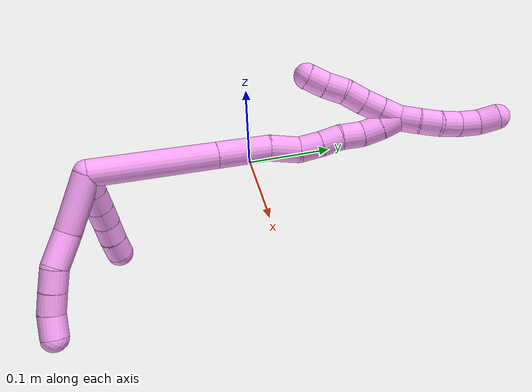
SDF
<sdf version="1.7">
 <world name="default">
  <model name="4">
   <static>0</static>
   <link name="4">
    <collision name="collision-cylinder-e_1_2_8">
     <pose>-0.001544 0.007897 0.026003 -0.29484 -0.056761 0.008431</pose>
     <geometry><cylinder><radius>0.0125</radius><length>0.054439</length></cylinder></geometry>
     <surface>
      <friction><ode><mu>1.16</mu><mu2>1.16</mu2><slip1>0</slip1><slip2>0</slip2></ode></friction>
      <contact><ode><kp>1e+06</kp><kd>1</kd><max_vel>0</max_vel><min_depth>0.001</min_depth></ode></contact>
     </surface>
    </collision>
    <visual name="visual-cylinder-e_1_2_8">
     <pose>-0.001544 0.007897 0.026003 -0.29484 -0.056761 0.008431</pose>
     <geometry><cylinder><radius>0.0125</radius><length>0.054439</length></cylinder></geometry>
     <material><ambient>1 0.65098 0.996078 1</ambient></material>
    </visual>
    <collision name="collision-cylinder-e_2_8_9">
     <pose>-0.007582 0.019086 0.067273 -0.212391 -0.280166 0.030059</pose>
     <geometry><cylinder><radius>0.0125</radius><length>0.032503</length></cylinder></geometry>
     <surface>
      <friction><ode><mu>1.16</mu><mu2>1.16</mu2><slip1>0</slip1><slip2>0</slip2></ode></friction>
      <contact><ode><kp>1e+06</kp><kd>1</kd><max_vel>0</max_vel><min_depth>0.001</min_depth></ode></contact>
     </surface>
    </collision>
    <visual name="visual-cylinder-e_2_8_9">
     <pose>-0.007582 0.019086 0.067273 -0.212391 -0.280166 0.030059</pose>
     <geometry><cylinder><radius>0.0125</radius><length>0.032503</length></cylinder></geometry>
     <material><ambient>1 0.65098 0.996078 1</ambient></material>
    </visual>
    <collision name="collision-cylinder-e_3_9_10">
     <pose>-0.013643 0.027393 0.091668 -0.50237 -0.149314 0.038381</pose>
     <geometry><cylinder><radius>0.0125</radius><length>0.021064</length></cylinder></geometry>
     <surface>
      <friction><ode><mu>1.16</mu><mu2>1.16</mu2><slip1>0</slip1><slip2>0</slip2></ode></friction>
      <contact><ode><kp>1e+06</kp><kd>1</kd><max_vel>0</max_vel><min_depth>0.001</min_depth></ode></contact>
     </surface>
    </collision>
    <visual name="visual-cylinder-e_3_9_10">
     <pose>-0.013643 0.027393 0.091668 -0.50237 -0.149314 0.038381</pose>
     <geometry><cylinder><radius>0.0125</radius><length>0.021064</length></cylinder></geometry>
     <material><ambient>1 0.65098 0.996078 1</ambient></material>
    </visual>
    <collision name="collision-cylinder-e_4_10_11">
     <pose>-0.016508 0.037423 0.109475 -0.523987 -0.128862 0.0346</pose>
     <geometry><cylinder><radius>0.0125</radius><length>0.020216</length></cylinder></geometry>
     <surface>
      <friction><ode><mu>1.16</mu><mu2>1.16</mu2><slip1>0</slip1><slip2>0</slip2></ode></friction>
      <contact><ode><kp>1e+06</kp><kd>1</kd><max_vel>0</max_vel><min_depth>0.001</min_depth></ode></contact>
     </surface>
    </collision>
    <visual name="visual-cylinder-e_4_10_11">
     <pose>-0.016508 0.037423 0.109475 -0.523987 -0.128862 0.0346</pose>
     <geometry><cylinder><radius>0.0125</radius><length>0.020216</length></cylinder></geometry>
     <material><ambient>1 0.65098 0.996078 1</ambient></material>
    </visual>
    <collision name="collision-cylinder-e_5_11_6">
     <pose>-0.02119 0.049124 0.126056 -0.702234 -0.315836 0.116529</pose>
     <geometry><cylinder><radius>0.0125</radius><length>0.021778</length></cylinder></geometry>
     <surface>
      <friction><ode><mu>1.16</mu><mu2>1.16</mu2><slip1>0</slip1><slip2>0</slip2></ode></friction>
      <contact><ode><kp>1e+06</kp><kd>1</kd><max_vel>0</max_vel><min_depth>0.001</min_depth></ode></contact>
     </surface>
    </collision>
    <visual name="visual-cylinder-e_5_11_6">
     <pose>-0.02119 0.049124 0.126056 -0.702234 -0.315836 0.116529</pose>
     <geometry><cylinder><radius>0.0125</radius><length>0.021778</length></cylinder></geometry>
     <material><ambient>1 0.65098 0.996078 1</ambient></material>
    </visual>
    <collision name="collision-cylinder-e_1_2_12">
     <pose>0.003553 0.007077 0.006107 -0.858785 0.363238 -0.16778</pose>
     <geometry><cylinder><radius>0.0125</radius><length>0.02</length></cylinder></geometry>
     <surface>
      <friction><ode><mu>1.16</mu><mu2>1.16</mu2><slip1>0</slip1><slip2>0</slip2></ode></friction>
      <contact><ode><kp>1e+06</kp><kd>1</kd><max_vel>0</max_vel><min_depth>0.001</min_depth></ode></contact>
     </surface>
    </collision>
    <visual name="visual-cylinder-e_1_2_12">
     <pose>0.003553 0.007077 0.006107 -0.858785 0.363238 -0.16778</pose>
     <geometry><cylinder><radius>0.0125</radius><length>0.02</length></cylinder></geometry>
     <material><ambient>1 0.65098 0.996078 1</ambient></material>
    </visual>
    <collision name="collision-cylinder-e_2_12_13">
     <pose>0.010843 0.0219 0.017316 -0.988492 0.383018 -0.208196</pose>
     <geometry><cylinder><radius>0.0125</radius><length>0.02</length></cylinder></geometry>
     <surface>
      <friction><ode><mu>1.16</mu><mu2>1.16</mu2><slip1>0</slip1><slip2>0</slip2></ode></friction>
      <contact><ode><kp>1e+06</kp><kd>1</kd><max_vel>0</max_vel><min_depth>0.001</min_depth></ode></contact>
     </surface>
    </collision>
    <visual name="visual-cylinder-e_2_12_13">
     <pose>0.010843 0.0219 0.017316 -0.988492 0.383018 -0.208196</pose>
     <geometry><cylinder><radius>0.0125</radius><length>0.02</length></cylinder></geometry>
     <material><ambient>1 0.65098 0.996078 1</ambient></material>
    </visual>
    <collision name="collision-cylinder-e_3_13_14">
     <pose>0.018298 0.037374 0.027561 -0.983389 0.380863 -0.205751</pose>
     <geometry><cylinder><radius>0.0125</radius><length>0.02</length></cylinder></geometry>
     <surface>
      <friction><ode><mu>1.16</mu><mu2>1.16</mu2><slip1>0</slip1><slip2>0</slip2></ode></friction>
      <contact><ode><kp>1e+06</kp><kd>1</kd><max_vel>0</max_vel><min_depth>0.001</min_depth></ode></contact>
     </surface>
    </collision>
    <visual name="visual-cylinder-e_3_13_14">
     <pose>0.018298 0.037374 0.027561 -0.983389 0.380863 -0.205751</pose>
     <geometry><cylinder><radius>0.0125</radius><length>0.02</length></cylinder></geometry>
     <material><ambient>1 0.65098 0.996078 1</ambient></material>
    </visual>
    <collision name="collision-cylinder-e_4_14_15">
     <pose>0.024581 0.053049 0.038206 -0.965538 0.25955 -0.136595</pose>
     <geometry><cylinder><radius>0.0125</radius><length>0.02</length></cylinder></geometry>
     <surface>
      <friction><ode><mu>1.16</mu><mu2>1.16</mu2><slip1>0</slip1><slip2>0</slip2></ode></friction>
      <contact><ode><kp>1e+06</kp><kd>1</kd><max_vel>0</max_vel><min_depth>0.001</min_depth></ode></contact>
     </surface>
    </collision>
    <visual name="visual-cylinder-e_4_14_15">
     <pose>0.024581 0.053049 0.038206 -0.965538 0.25955 -0.136595</pose>
     <geometry><cylinder><radius>0.0125</radius><length>0.02</length></cylinder></geometry>
     <material><ambient>1 0.65098 0.996078 1</ambient></material>
    </visual>
    <collision name="collision-cylinder-e_5_15_5">
     <pose>0.03013 0.069143 0.04868 -1.02245 0.302795 -0.170752</pose>
     <geometry><cylinder><radius>0.0125</radius><length>0.02</length></cylinder></geometry>
     <surface>
      <friction><ode><mu>1.16</mu><mu2>1.16</mu2><slip1>0</slip1><slip2>0</slip2></ode></friction>
      <contact><ode><kp>1e+06</kp><kd>1</kd><max_vel>0</max_vel><min_depth>0.001</min_depth></ode></contact>
     </surface>
    </collision>
    <visual name="visual-cylinder-e_5_15_5">
     <pose>0.03013 0.069143 0.04868 -1.02245 0.302795 -0.170752</pose>
     <geometry><cylinder><radius>0.0125</radius><length>0.02</length></cylinder></geometry>
     <material><ambient>1 0.65098 0.996078 1</ambient></material>
    </visual>
    <collision name="collision-cylinder-e_1_2_16">
     <pose>-0.003388 0.041954 -0.039435 -2.32526 -0.058769 0.135729</pose>
     <geometry><cylinder><radius>0.0125</radius><length>0.115356</length></cylinder></geometry>
     <surface>
      <friction><ode><mu>1.16</mu><mu2>1.16</mu2><slip1>0</slip1><slip2>0</slip2></ode></friction>
      <contact><ode><kp>1e+06</kp><kd>1</kd><max_vel>0</max_vel><min_depth>0.001</min_depth></ode></contact>
     </surface>
    </collision>
    <visual name="visual-cylinder-e_1_2_16">
     <pose>-0.003388 0.041954 -0.039435 -2.32526 -0.058769 0.135729</pose>
     <geometry><cylinder><radius>0.0125</radius><length>0.115356</length></cylinder></geometry>
     <material><ambient>1 0.65098 0.996078 1</ambient></material>
    </visual>
    <collision name="collision-cylinder-e_2_16_17">
     <pose>-0.008298 0.102429 -0.09632 -2.32639 -0.059774 0.138256</pose>
     <geometry><cylinder><radius>0.0125</radius><length>0.050984</length></cylinder></geometry>
     <surface>
      <friction><ode><mu>1.16</mu><mu2>1.16</mu2><slip1>0</slip1><slip2>0</slip2></ode></friction>
      <contact><ode><kp>1e+06</kp><kd>1</kd><max_vel>0</max_vel><min_depth>0.001</min_depth></ode></contact>
     </surface>
    </collision>
    <visual name="visual-cylinder-e_2_16_17">
     <pose>-0.008298 0.102429 -0.09632 -2.32639 -0.059774 0.138256</pose>
     <geometry><cylinder><radius>0.0125</radius><length>0.050984</length></cylinder></geometry>
     <material><ambient>1 0.65098 0.996078 1</ambient></material>
    </visual>
    <collision name="collision-cylinder-e_3_17_18">
     <pose>-0.013121 0.132807 -0.12167 -2.15863 -0.2276 0.420715</pose>
     <geometry><cylinder><radius>0.0125</radius><length>0.029251</length></cylinder></geometry>
     <surface>
      <friction><ode><mu>1.16</mu><mu2>1.16</mu2><slip1>0</slip1><slip2>0</slip2></ode></friction>
      <contact><ode><kp>1e+06</kp><kd>1</kd><max_vel>0</max_vel><min_depth>0.001</min_depth></ode></contact>
     </surface>
    </collision>
    <visual name="visual-cylinder-e_3_17_18">
     <pose>-0.013121 0.132807 -0.12167 -2.15863 -0.2276 0.420715</pose>
     <geometry><cylinder><radius>0.0125</radius><length>0.029251</length></cylinder></geometry>
     <material><ambient>1 0.65098 0.996078 1</ambient></material>
    </visual>
    <collision name="collision-cylinder-e_4_18_19">
     <pose>-0.018318 0.1512 -0.137983 -2.48096 -0.176215 0.504298</pose>
     <geometry><cylinder><radius>0.0125</radius><length>0.021639</length></cylinder></geometry>
     <surface>
      <friction><ode><mu>1.16</mu><mu2>1.16</mu2><slip1>0</slip1><slip2>0</slip2></ode></friction>
      <contact><ode><kp>1e+06</kp><kd>1</kd><max_vel>0</max_vel><min_depth>0.001</min_depth></ode></contact>
     </surface>
    </collision>
    <visual name="visual-cylinder-e_4_18_19">
     <pose>-0.018318 0.1512 -0.137983 -2.48096 -0.176215 0.504298</pose>
     <geometry><cylinder><radius>0.0125</radius><length>0.021639</length></cylinder></geometry>
     <material><ambient>1 0.65098 0.996078 1</ambient></material>
    </visual>
    <collision name="collision-cylinder-e_5_19_20">
     <pose>-0.02164 0.163444 -0.154844 -2.54752 -0.138879 0.446857</pose>
     <geometry><cylinder><radius>0.0125</radius><length>0.020593</length></cylinder></geometry>
     <surface>
      <friction><ode><mu>1.16</mu><mu2>1.16</mu2><slip1>0</slip1><slip2>0</slip2></ode></friction>
      <contact><ode><kp>1e+06</kp><kd>1</kd><max_vel>0</max_vel><min_depth>0.001</min_depth></ode></contact>
     </surface>
    </collision>
    <visual name="visual-cylinder-e_5_19_20">
     <pose>-0.02164 0.163444 -0.154844 -2.54752 -0.138879 0.446857</pose>
     <geometry><cylinder><radius>0.0125</radius><length>0.020593</length></cylinder></geometry>
     <material><ambient>1 0.65098 0.996078 1</ambient></material>
    </visual>
    <collision name="collision-cylinder-e_6_20_21">
     <pose>-0.024589 0.176863 -0.170848 -2.3459 -0.140169 0.331023</pose>
     <geometry><cylinder><radius>0.0125</radius><length>0.021804</length></cylinder></geometry>
     <surface>
      <friction><ode><mu>1.16</mu><mu2>1.16</mu2><slip1>0</slip1><slip2>0</slip2></ode></friction>
      <contact><ode><kp>1e+06</kp><kd>1</kd><max_vel>0</max_vel><min_depth>0.001</min_depth></ode></contact>
     </surface>
    </collision>
    <visual name="visual-cylinder-e_6_20_21">
     <pose>-0.024589 0.176863 -0.170848 -2.3459 -0.140169 0.331023</pose>
     <geometry><cylinder><radius>0.0125</radius><length>0.021804</length></cylinder></geometry>
     <material><ambient>1 0.65098 0.996078 1</ambient></material>
    </visual>
    <collision name="collision-cylinder-e_7_21_22">
     <pose>-0.028105 0.189826 -0.186738 -2.57938 -0.199649 0.66775</pose>
     <geometry><cylinder><radius>0.0125</radius><length>0.020104</length></cylinder></geometry>
     <surface>
      <friction><ode><mu>1.16</mu><mu2>1.16</mu2><slip1>0</slip1><slip2>0</slip2></ode></friction>
      <contact><ode><kp>1e+06</kp><kd>1</kd><max_vel>0</max_vel><min_depth>0.001</min_depth></ode></contact>
     </surface>
    </collision>
    <visual name="visual-cylinder-e_7_21_22">
     <pose>-0.028105 0.189826 -0.186738 -2.57938 -0.199649 0.66775</pose>
     <geometry><cylinder><radius>0.0125</radius><length>0.020104</length></cylinder></geometry>
     <material><ambient>1 0.65098 0.996078 1</ambient></material>
    </visual>
    <collision name="collision-cylinder-e_8_22_1">
     <pose>-0.032122 0.199188 -0.204115 -2.71498 -0.200979 0.871341</pose>
     <geometry><cylinder><radius>0.0125</radius><length>0.02027</length></cylinder></geometry>
     <surface>
      <friction><ode><mu>1.16</mu><mu2>1.16</mu2><slip1>0</slip1><slip2>0</slip2></ode></friction>
      <contact><ode><kp>1e+06</kp><kd>1</kd><max_vel>0</max_vel><min_depth>0.001</min_depth></ode></contact>
     </surface>
    </collision>
    <visual name="visual-cylinder-e_8_22_1">
     <pose>-0.032122 0.199188 -0.204115 -2.71498 -0.200979 0.871341</pose>
     <geometry><cylinder><radius>0.0125</radius><length>0.02027</length></cylinder></geometry>
     <material><ambient>1 0.65098 0.996078 1</ambient></material>
    </visual>
    <collision name="collision-cylinder-e_1_1_23">
     <pose>-0.030601 0.194214 -0.210934 1.33093 0.362291 0.285557</pose>
     <geometry><cylinder><radius>0.0125</radius><length>0.02</length></cylinder></geometry>
     <surface>
      <friction><ode><mu>1.16</mu><mu2>1.16</mu2><slip1>0</slip1><slip2>0</slip2></ode></friction>
      <contact><ode><kp>1e+06</kp><kd>1</kd><max_vel>0</max_vel><min_depth>0.001</min_depth></ode></contact>
     </surface>
    </collision>
    <visual name="visual-cylinder-e_1_1_23">
     <pose>-0.030601 0.194214 -0.210934 1.33093 0.362291 0.285557</pose>
     <geometry><cylinder><radius>0.0125</radius><length>0.02</length></cylinder></geometry>
     <material><ambient>1 0.65098 0.996078 1</ambient></material>
    </visual>
    <collision name="collision-cylinder-e_2_23_24">
     <pose>-0.024382 0.175786 -0.206362 1.32431 0.27076 0.211581</pose>
     <geometry><cylinder><radius>0.0125</radius><length>0.02</length></cylinder></geometry>
     <surface>
      <friction><ode><mu>1.16</mu><mu2>1.16</mu2><slip1>0</slip1><slip2>0</slip2></ode></friction>
      <contact><ode><kp>1e+06</kp><kd>1</kd><max_vel>0</max_vel><min_depth>0.001</min_depth></ode></contact>
     </surface>
    </collision>
    <visual name="visual-cylinder-e_2_23_24">
     <pose>-0.024382 0.175786 -0.206362 1.32431 0.27076 0.211581</pose>
     <geometry><cylinder><radius>0.0125</radius><length>0.02</length></cylinder></geometry>
     <material><ambient>1 0.65098 0.996078 1</ambient></material>
    </visual>
    <collision name="collision-cylinder-e_3_24_25">
     <pose>-0.019437 0.156842 -0.202371 1.40164 0.229027 0.19347</pose>
     <geometry><cylinder><radius>0.0125</radius><length>0.02</length></cylinder></geometry>
     <surface>
      <friction><ode><mu>1.16</mu><mu2>1.16</mu2><slip1>0</slip1><slip2>0</slip2></ode></friction>
      <contact><ode><kp>1e+06</kp><kd>1</kd><max_vel>0</max_vel><min_depth>0.001</min_depth></ode></contact>
     </surface>
    </collision>
    <visual name="visual-cylinder-e_3_24_25">
     <pose>-0.019437 0.156842 -0.202371 1.40164 0.229027 0.19347</pose>
     <geometry><cylinder><radius>0.0125</radius><length>0.02</length></cylinder></geometry>
     <material><ambient>1 0.65098 0.996078 1</ambient></material>
    </visual>
    <collision name="collision-cylinder-e_4_25_26">
     <pose>-0.013202 0.138616 -0.19759 1.22158 0.407712 0.287463</pose>
     <geometry><cylinder><radius>0.0125</radius><length>0.02</length></cylinder></geometry>
     <surface>
      <friction><ode><mu>1.16</mu><mu2>1.16</mu2><slip1>0</slip1><slip2>0</slip2></ode></friction>
      <contact><ode><kp>1e+06</kp><kd>1</kd><max_vel>0</max_vel><min_depth>0.001</min_depth></ode></contact>
     </surface>
    </collision>
    <visual name="visual-cylinder-e_4_25_26">
     <pose>-0.013202 0.138616 -0.19759 1.22158 0.407712 0.287463</pose>
     <geometry><cylinder><radius>0.0125</radius><length>0.02</length></cylinder></geometry>
     <material><ambient>1 0.65098 0.996078 1</ambient></material>
    </visual>
    <collision name="collision-cylinder-e_5_26_4">
     <pose>-0.00705 0.120496 -0.192195 1.33766 0.220493 0.174531</pose>
     <geometry><cylinder><radius>0.0125</radius><length>0.02</length></cylinder></geometry>
     <surface>
      <friction><ode><mu>1.16</mu><mu2>1.16</mu2><slip1>0</slip1><slip2>0</slip2></ode></friction>
      <contact><ode><kp>1e+06</kp><kd>1</kd><max_vel>0</max_vel><min_depth>0.001</min_depth></ode></contact>
     </surface>
    </collision>
    <visual name="visual-cylinder-e_5_26_4">
     <pose>-0.00705 0.120496 -0.192195 1.33766 0.220493 0.174531</pose>
     <geometry><cylinder><radius>0.0125</radius><length>0.02</length></cylinder></geometry>
     <material><ambient>1 0.65098 0.996078 1</ambient></material>
    </visual>
    <collision name="collision-cylinder-e_1_1_27">
     <pose>-0.039087 0.21076 -0.217615 -2.10943 -0.516917 0.872092</pose>
     <geometry><cylinder><radius>0.0125</radius><length>0.02</length></cylinder></geometry>
     <surface>
      <friction><ode><mu>1.16</mu><mu2>1.16</mu2><slip1>0</slip1><slip2>0</slip2></ode></friction>
      <contact><ode><kp>1e+06</kp><kd>1</kd><max_vel>0</max_vel><min_depth>0.001</min_depth></ode></contact>
     </surface>
    </collision>
    <visual name="visual-cylinder-e_1_1_27">
     <pose>-0.039087 0.21076 -0.217615 -2.10943 -0.516917 0.872092</pose>
     <geometry><cylinder><radius>0.0125</radius><length>0.02</length></cylinder></geometry>
     <material><ambient>1 0.65098 0.996078 1</ambient></material>
    </visual>
    <collision name="collision-cylinder-e_2_27_28">
     <pose>-0.047841 0.226095 -0.226921 -2.12261 -0.391 0.681272</pose>
     <geometry><cylinder><radius>0.0125</radius><length>0.02</length></cylinder></geometry>
     <surface>
      <friction><ode><mu>1.16</mu><mu2>1.16</mu2><slip1>0</slip1><slip2>0</slip2></ode></friction>
      <contact><ode><kp>1e+06</kp><kd>1</kd><max_vel>0</max_vel><min_depth>0.001</min_depth></ode></contact>
     </surface>
    </collision>
    <visual name="visual-cylinder-e_2_27_28">
     <pose>-0.047841 0.226095 -0.226921 -2.12261 -0.391 0.681272</pose>
     <geometry><cylinder><radius>0.0125</radius><length>0.02</length></cylinder></geometry>
     <material><ambient>1 0.65098 0.996078 1</ambient></material>
    </visual>
    <collision name="collision-cylinder-e_3_28_29">
     <pose>-0.053159 0.242033 -0.237486 -2.18756 -0.151285 0.291206</pose>
     <geometry><cylinder><radius>0.0125</radius><length>0.02</length></cylinder></geometry>
     <surface>
      <friction><ode><mu>1.16</mu><mu2>1.16</mu2><slip1>0</slip1><slip2>0</slip2></ode></friction>
      <contact><ode><kp>1e+06</kp><kd>1</kd><max_vel>0</max_vel><min_depth>0.001</min_depth></ode></contact>
     </surface>
    </collision>
    <visual name="visual-cylinder-e_3_28_29">
     <pose>-0.053159 0.242033 -0.237486 -2.18756 -0.151285 0.291206</pose>
     <geometry><cylinder><radius>0.0125</radius><length>0.02</length></cylinder></geometry>
     <material><ambient>1 0.65098 0.996078 1</ambient></material>
    </visual>
    <collision name="collision-cylinder-e_4_29_30">
     <pose>-0.057244 0.257125 -0.249834 -2.32712 -0.2608 0.590303</pose>
     <geometry><cylinder><radius>0.0125</radius><length>0.02</length></cylinder></geometry>
     <surface>
      <friction><ode><mu>1.16</mu><mu2>1.16</mu2><slip1>0</slip1><slip2>0</slip2></ode></friction>
      <contact><ode><kp>1e+06</kp><kd>1</kd><max_vel>0</max_vel><min_depth>0.001</min_depth></ode></contact>
     </surface>
    </collision>
    <visual name="visual-cylinder-e_4_29_30">
     <pose>-0.057244 0.257125 -0.249834 -2.32712 -0.2608 0.590303</pose>
     <geometry><cylinder><radius>0.0125</radius><length>0.02</length></cylinder></geometry>
     <material><ambient>1 0.65098 0.996078 1</ambient></material>
    </visual>
    <collision name="collision-cylinder-e_5_30_3">
     <pose>-0.063345 0.269257 -0.264309 -2.56465 -0.359921 1.09995</pose>
     <geometry><cylinder><radius>0.0125</radius><length>0.02</length></cylinder></geometry>
     <surface>
      <friction><ode><mu>1.16</mu><mu2>1.16</mu2><slip1>0</slip1><slip2>0</slip2></ode></friction>
      <contact><ode><kp>1e+06</kp><kd>1</kd><max_vel>0</max_vel><min_depth>0.001</min_depth></ode></contact>
     </surface>
    </collision>
    <visual name="visual-cylinder-e_5_30_3">
     <pose>-0.063345 0.269257 -0.264309 -2.56465 -0.359921 1.09995</pose>
     <geometry><cylinder><radius>0.0125</radius><length>0.02</length></cylinder></geometry>
     <material><ambient>1 0.65098 0.996078 1</ambient></material>
    </visual>
    <collision name="collision-sphere-3">
     <pose>-0.066867 0.274363 -0.272153 0 -0 0</pose>
     <geometry><sphere><radius>0.0125</radius></sphere></geometry>
     <surface>
      <friction><ode><mu>1.16</mu><mu2>1.16</mu2><slip1>0</slip1><slip2>0</slip2></ode></friction>
      <contact><ode><kp>1e+06</kp><kd>1</kd><max_vel>0</max_vel><min_depth>0.001</min_depth></ode></contact>
     </surface>
    </collision>
    <visual name="visual-sphere-3">
     <pose>-0.066867 0.274363 -0.272153 0 -0 0</pose>
     <geometry><sphere><radius>0.0125</radius></sphere></geometry>
     <material><ambient>1 0.65098 0.996078 1</ambient></material>
    </visual>
    <collision name="collision-sphere-30">
     <pose>-0.059823 0.264152 -0.256465 0 -0 0</pose>
     <geometry><sphere><radius>0.0125</radius></sphere></geometry>
     <surface>
      <friction><ode><mu>1.16</mu><mu2>1.16</mu2><slip1>0</slip1><slip2>0</slip2></ode></friction>
      <contact><ode><kp>1e+06</kp><kd>1</kd><max_vel>0</max_vel><min_depth>0.001</min_depth></ode></contact>
     </surface>
    </collision>
    <visual name="visual-sphere-30">
     <pose>-0.059823 0.264152 -0.256465 0 -0 0</pose>
     <geometry><sphere><radius>0.0125</radius></sphere></geometry>
     <material><ambient>1 0.65098 0.996078 1</ambient></material>
    </visual>
    <collision name="collision-sphere-29">
     <pose>-0.054666 0.250097 -0.243204 0 -0 0</pose>
     <geometry><sphere><radius>0.0125</radius></sphere></geometry>
     <surface>
      <friction><ode><mu>1.16</mu><mu2>1.16</mu2><slip1>0</slip1><slip2>0</slip2></ode></friction>
      <contact><ode><kp>1e+06</kp><kd>1</kd><max_vel>0</max_vel><min_depth>0.001</min_depth></ode></contact>
     </surface>
    </collision>
    <visual name="visual-sphere-29">
     <pose>-0.054666 0.250097 -0.243204 0 -0 0</pose>
     <geometry><sphere><radius>0.0125</radius></sphere></geometry>
     <material><ambient>1 0.65098 0.996078 1</ambient></material>
    </visual>
    <collision name="collision-sphere-28">
     <pose>-0.051652 0.233968 -0.231768 0 -0 0</pose>
     <geometry><sphere><radius>0.0125</radius></sphere></geometry>
     <surface>
      <friction><ode><mu>1.16</mu><mu2>1.16</mu2><slip1>0</slip1><slip2>0</slip2></ode></friction>
      <contact><ode><kp>1e+06</kp><kd>1</kd><max_vel>0</max_vel><min_depth>0.001</min_depth></ode></contact>
     </surface>
    </collision>
    <visual name="visual-sphere-28">
     <pose>-0.051652 0.233968 -0.231768 0 -0 0</pose>
     <geometry><sphere><radius>0.0125</radius></sphere></geometry>
     <material><ambient>1 0.65098 0.996078 1</ambient></material>
    </visual>
    <collision name="collision-sphere-27">
     <pose>-0.044029 0.218222 -0.222075 0 -0 0</pose>
     <geometry><sphere><radius>0.0125</radius></sphere></geometry>
     <surface>
      <friction><ode><mu>1.16</mu><mu2>1.16</mu2><slip1>0</slip1><slip2>0</slip2></ode></friction>
      <contact><ode><kp>1e+06</kp><kd>1</kd><max_vel>0</max_vel><min_depth>0.001</min_depth></ode></contact>
     </surface>
    </collision>
    <visual name="visual-sphere-27">
     <pose>-0.044029 0.218222 -0.222075 0 -0 0</pose>
     <geometry><sphere><radius>0.0125</radius></sphere></geometry>
     <material><ambient>1 0.65098 0.996078 1</ambient></material>
    </visual>
    <collision name="collision-sphere-4">
     <pose>-0.004863 0.111002 -0.18994 0 -0 0</pose>
     <geometry><sphere><radius>0.0125</radius></sphere></geometry>
     <surface>
      <friction><ode><mu>1.16</mu><mu2>1.16</mu2><slip1>0</slip1><slip2>0</slip2></ode></friction>
      <contact><ode><kp>1e+06</kp><kd>1</kd><max_vel>0</max_vel><min_depth>0.001</min_depth></ode></contact>
     </surface>
    </collision>
    <visual name="visual-sphere-4">
     <pose>-0.004863 0.111002 -0.18994 0 -0 0</pose>
     <geometry><sphere><radius>0.0125</radius></sphere></geometry>
     <material><ambient>1 0.65098 0.996078 1</ambient></material>
    </visual>
    <collision name="collision-sphere-26">
     <pose>-0.009237 0.12999 -0.194449 0 -0 0</pose>
     <geometry><sphere><radius>0.0125</radius></sphere></geometry>
     <surface>
      <friction><ode><mu>1.16</mu><mu2>1.16</mu2><slip1>0</slip1><slip2>0</slip2></ode></friction>
      <contact><ode><kp>1e+06</kp><kd>1</kd><max_vel>0</max_vel><min_depth>0.001</min_depth></ode></contact>
     </surface>
    </collision>
    <visual name="visual-sphere-26">
     <pose>-0.009237 0.12999 -0.194449 0 -0 0</pose>
     <geometry><sphere><radius>0.0125</radius></sphere></geometry>
     <material><ambient>1 0.65098 0.996078 1</ambient></material>
    </visual>
    <collision name="collision-sphere-25">
     <pose>-0.017167 0.147242 -0.200731 0 -0 0</pose>
     <geometry><sphere><radius>0.0125</radius></sphere></geometry>
     <surface>
      <friction><ode><mu>1.16</mu><mu2>1.16</mu2><slip1>0</slip1><slip2>0</slip2></ode></friction>
      <contact><ode><kp>1e+06</kp><kd>1</kd><max_vel>0</max_vel><min_depth>0.001</min_depth></ode></contact>
     </surface>
    </collision>
    <visual name="visual-sphere-25">
     <pose>-0.017167 0.147242 -0.200731 0 -0 0</pose>
     <geometry><sphere><radius>0.0125</radius></sphere></geometry>
     <material><ambient>1 0.65098 0.996078 1</ambient></material>
    </visual>
    <collision name="collision-sphere-24">
     <pose>-0.021708 0.166442 -0.204011 0 -0 0</pose>
     <geometry><sphere><radius>0.0125</radius></sphere></geometry>
     <surface>
      <friction><ode><mu>1.16</mu><mu2>1.16</mu2><slip1>0</slip1><slip2>0</slip2></ode></friction>
      <contact><ode><kp>1e+06</kp><kd>1</kd><max_vel>0</max_vel><min_depth>0.001</min_depth></ode></contact>
     </surface>
    </collision>
    <visual name="visual-sphere-24">
     <pose>-0.021708 0.166442 -0.204011 0 -0 0</pose>
     <geometry><sphere><radius>0.0125</radius></sphere></geometry>
     <material><ambient>1 0.65098 0.996078 1</ambient></material>
    </visual>
    <collision name="collision-sphere-23">
     <pose>-0.027057 0.185131 -0.208713 0 -0 0</pose>
     <geometry><sphere><radius>0.0125</radius></sphere></geometry>
     <surface>
      <friction><ode><mu>1.16</mu><mu2>1.16</mu2><slip1>0</slip1><slip2>0</slip2></ode></friction>
      <contact><ode><kp>1e+06</kp><kd>1</kd><max_vel>0</max_vel><min_depth>0.001</min_depth></ode></contact>
     </surface>
    </collision>
    <visual name="visual-sphere-23">
     <pose>-0.027057 0.185131 -0.208713 0 -0 0</pose>
     <geometry><sphere><radius>0.0125</radius></sphere></geometry>
     <material><ambient>1 0.65098 0.996078 1</ambient></material>
    </visual>
    <collision name="collision-sphere-1">
     <pose>-0.034145 0.203297 -0.213156 0 -0 0</pose>
     <geometry><sphere><radius>0.0125</radius></sphere></geometry>
     <surface>
      <friction><ode><mu>1.16</mu><mu2>1.16</mu2><slip1>0</slip1><slip2>0</slip2></ode></friction>
      <contact><ode><kp>1e+06</kp><kd>1</kd><max_vel>0</max_vel><min_depth>0.001</min_depth></ode></contact>
     </surface>
    </collision>
    <visual name="visual-sphere-1">
     <pose>-0.034145 0.203297 -0.213156 0 -0 0</pose>
     <geometry><sphere><radius>0.0125</radius></sphere></geometry>
     <material><ambient>1 0.65098 0.996078 1</ambient></material>
    </visual>
    <collision name="collision-sphere-22">
     <pose>-0.030099 0.195078 -0.195074 0 -0 0</pose>
     <geometry><sphere><radius>0.0125</radius></sphere></geometry>
     <surface>
      <friction><ode><mu>1.16</mu><mu2>1.16</mu2><slip1>0</slip1><slip2>0</slip2></ode></friction>
      <contact><ode><kp>1e+06</kp><kd>1</kd><max_vel>0</max_vel><min_depth>0.001</min_depth></ode></contact>
     </surface>
    </collision>
    <visual name="visual-sphere-22">
     <pose>-0.030099 0.195078 -0.195074 0 -0 0</pose>
     <geometry><sphere><radius>0.0125</radius></sphere></geometry>
     <material><ambient>1 0.65098 0.996078 1</ambient></material>
    </visual>
    <collision name="collision-sphere-21">
     <pose>-0.026112 0.184574 -0.178403 0 -0 0</pose>
     <geometry><sphere><radius>0.0125</radius></sphere></geometry>
     <surface>
      <friction><ode><mu>1.16</mu><mu2>1.16</mu2><slip1>0</slip1><slip2>0</slip2></ode></friction>
      <contact><ode><kp>1e+06</kp><kd>1</kd><max_vel>0</max_vel><min_depth>0.001</min_depth></ode></contact>
     </surface>
    </collision>
    <visual name="visual-sphere-21">
     <pose>-0.026112 0.184574 -0.178403 0 -0 0</pose>
     <geometry><sphere><radius>0.0125</radius></sphere></geometry>
     <material><ambient>1 0.65098 0.996078 1</ambient></material>
    </visual>
    <collision name="collision-sphere-6">
     <pose>-0.024572 0.05581 0.133957 0 -0 0</pose>
     <geometry><sphere><radius>0.0125</radius></sphere></geometry>
     <surface>
      <friction><ode><mu>1.16</mu><mu2>1.16</mu2><slip1>0</slip1><slip2>0</slip2></ode></friction>
      <contact><ode><kp>1e+06</kp><kd>1</kd><max_vel>0</max_vel><min_depth>0.001</min_depth></ode></contact>
     </surface>
    </collision>
    <visual name="visual-sphere-6">
     <pose>-0.024572 0.05581 0.133957 0 -0 0</pose>
     <geometry><sphere><radius>0.0125</radius></sphere></geometry>
     <material><ambient>1 0.65098 0.996078 1</ambient></material>
    </visual>
    <collision name="collision-sphere-11">
     <pose>-0.017807 0.042438 0.118154 0 -0 0</pose>
     <geometry><sphere><radius>0.0125</radius></sphere></geometry>
     <surface>
      <friction><ode><mu>1.16</mu><mu2>1.16</mu2><slip1>0</slip1><slip2>0</slip2></ode></friction>
      <contact><ode><kp>1e+06</kp><kd>1</kd><max_vel>0</max_vel><min_depth>0.001</min_depth></ode></contact>
     </surface>
    </collision>
    <visual name="visual-sphere-11">
     <pose>-0.017807 0.042438 0.118154 0 -0 0</pose>
     <geometry><sphere><radius>0.0125</radius></sphere></geometry>
     <material><ambient>1 0.65098 0.996078 1</ambient></material>
    </visual>
    <collision name="collision-sphere-10">
     <pose>-0.015209 0.032408 0.100795 0 -0 0</pose>
     <geometry><sphere><radius>0.0125</radius></sphere></geometry>
     <surface>
      <friction><ode><mu>1.16</mu><mu2>1.16</mu2><slip1>0</slip1><slip2>0</slip2></ode></friction>
      <contact><ode><kp>1e+06</kp><kd>1</kd><max_vel>0</max_vel><min_depth>0.001</min_depth></ode></contact>
     </surface>
    </collision>
    <visual name="visual-sphere-10">
     <pose>-0.015209 0.032408 0.100795 0 -0 0</pose>
     <geometry><sphere><radius>0.0125</radius></sphere></geometry>
     <material><ambient>1 0.65098 0.996078 1</ambient></material>
    </visual>
    <collision name="collision-sphere-9">
     <pose>-0.012076 0.022378 0.08254 0 -0 0</pose>
     <geometry><sphere><radius>0.0125</radius></sphere></geometry>
     <surface>
      <friction><ode><mu>1.16</mu><mu2>1.16</mu2><slip1>0</slip1><slip2>0</slip2></ode></friction>
      <contact><ode><kp>1e+06</kp><kd>1</kd><max_vel>0</max_vel><min_depth>0.001</min_depth></ode></contact>
     </surface>
    </collision>
    <visual name="visual-sphere-9">
     <pose>-0.012076 0.022378 0.08254 0 -0 0</pose>
     <geometry><sphere><radius>0.0125</radius></sphere></geometry>
     <material><ambient>1 0.65098 0.996078 1</ambient></material>
    </visual>
    <collision name="collision-sphere-2">
     <geometry><sphere><radius>0.0125</radius></sphere></geometry>
     <surface>
      <friction><ode><mu>1.16</mu><mu2>1.16</mu2><slip1>0</slip1><slip2>0</slip2></ode></friction>
      <contact><ode><kp>1e+06</kp><kd>1</kd><max_vel>0</max_vel><min_depth>0.001</min_depth></ode></contact>
     </surface>
    </collision>
    <visual name="visual-sphere-2">
     <geometry><sphere><radius>0.0125</radius></sphere></geometry>
     <material><ambient>1 0.65098 0.996078 1</ambient></material>
    </visual>
    <collision name="collision-sphere-19">
     <pose>-0.020215 0.157736 -0.146393 0 -0 0</pose>
     <geometry><sphere><radius>0.0125</radius></sphere></geometry>
     <surface>
      <friction><ode><mu>1.16</mu><mu2>1.16</mu2><slip1>0</slip1><slip2>0</slip2></ode></friction>
      <contact><ode><kp>1e+06</kp><kd>1</kd><max_vel>0</max_vel><min_depth>0.001</min_depth></ode></contact>
     </surface>
    </collision>
    <visual name="visual-sphere-19">
     <pose>-0.020215 0.157736 -0.146393 0 -0 0</pose>
     <geometry><sphere><radius>0.0125</radius></sphere></geometry>
     <material><ambient>1 0.65098 0.996078 1</ambient></material>
    </visual>
    <collision name="collision-sphere-8">
     <pose>-0.003088 0.015794 0.052006 0 -0 0</pose>
     <geometry><sphere><radius>0.0125</radius></sphere></geometry>
     <surface>
      <friction><ode><mu>1.16</mu><mu2>1.16</mu2><slip1>0</slip1><slip2>0</slip2></ode></friction>
      <contact><ode><kp>1e+06</kp><kd>1</kd><max_vel>0</max_vel><min_depth>0.001</min_depth></ode></contact>
     </surface>
    </collision>
    <visual name="visual-sphere-8">
     <pose>-0.003088 0.015794 0.052006 0 -0 0</pose>
     <geometry><sphere><radius>0.0125</radius></sphere></geometry>
     <material><ambient>1 0.65098 0.996078 1</ambient></material>
    </visual>
    <collision name="collision-sphere-12">
     <pose>0.007106 0.014153 0.012215 0 -0 0</pose>
     <geometry><sphere><radius>0.0125</radius></sphere></geometry>
     <surface>
      <friction><ode><mu>1.16</mu><mu2>1.16</mu2><slip1>0</slip1><slip2>0</slip2></ode></friction>
      <contact><ode><kp>1e+06</kp><kd>1</kd><max_vel>0</max_vel><min_depth>0.001</min_depth></ode></contact>
     </surface>
    </collision>
    <visual name="visual-sphere-12">
     <pose>0.007106 0.014153 0.012215 0 -0 0</pose>
     <geometry><sphere><radius>0.0125</radius></sphere></geometry>
     <material><ambient>1 0.65098 0.996078 1</ambient></material>
    </visual>
    <collision name="collision-sphere-13">
     <pose>0.01458 0.029647 0.022417 0 -0 0</pose>
     <geometry><sphere><radius>0.0125</radius></sphere></geometry>
     <surface>
      <friction><ode><mu>1.16</mu><mu2>1.16</mu2><slip1>0</slip1><slip2>0</slip2></ode></friction>
      <contact><ode><kp>1e+06</kp><kd>1</kd><max_vel>0</max_vel><min_depth>0.001</min_depth></ode></contact>
     </surface>
    </collision>
    <visual name="visual-sphere-13">
     <pose>0.01458 0.029647 0.022417 0 -0 0</pose>
     <geometry><sphere><radius>0.0125</radius></sphere></geometry>
     <material><ambient>1 0.65098 0.996078 1</ambient></material>
    </visual>
    <collision name="collision-sphere-14">
     <pose>0.022015 0.045101 0.032706 0 -0 0</pose>
     <geometry><sphere><radius>0.0125</radius></sphere></geometry>
     <surface>
      <friction><ode><mu>1.16</mu><mu2>1.16</mu2><slip1>0</slip1><slip2>0</slip2></ode></friction>
      <contact><ode><kp>1e+06</kp><kd>1</kd><max_vel>0</max_vel><min_depth>0.001</min_depth></ode></contact>
     </surface>
    </collision>
    <visual name="visual-sphere-14">
     <pose>0.022015 0.045101 0.032706 0 -0 0</pose>
     <geometry><sphere><radius>0.0125</radius></sphere></geometry>
     <material><ambient>1 0.65098 0.996078 1</ambient></material>
    </visual>
    <collision name="collision-sphere-15">
     <pose>0.027148 0.060998 0.043705 0 -0 0</pose>
     <geometry><sphere><radius>0.0125</radius></sphere></geometry>
     <surface>
      <friction><ode><mu>1.16</mu><mu2>1.16</mu2><slip1>0</slip1><slip2>0</slip2></ode></friction>
      <contact><ode><kp>1e+06</kp><kd>1</kd><max_vel>0</max_vel><min_depth>0.001</min_depth></ode></contact>
     </surface>
    </collision>
    <visual name="visual-sphere-15">
     <pose>0.027148 0.060998 0.043705 0 -0 0</pose>
     <geometry><sphere><radius>0.0125</radius></sphere></geometry>
     <material><ambient>1 0.65098 0.996078 1</ambient></material>
    </visual>
    <collision name="collision-sphere-5">
     <pose>0.033112 0.077289 0.053656 0 -0 0</pose>
     <geometry><sphere><radius>0.0125</radius></sphere></geometry>
     <surface>
      <friction><ode><mu>1.16</mu><mu2>1.16</mu2><slip1>0</slip1><slip2>0</slip2></ode></friction>
      <contact><ode><kp>1e+06</kp><kd>1</kd><max_vel>0</max_vel><min_depth>0.001</min_depth></ode></contact>
     </surface>
    </collision>
    <visual name="visual-sphere-5">
     <pose>0.033112 0.077289 0.053656 0 -0 0</pose>
     <geometry><sphere><radius>0.0125</radius></sphere></geometry>
     <material><ambient>1 0.65098 0.996078 1</ambient></material>
    </visual>
    <collision name="collision-sphere-16">
     <pose>-0.006775 0.083907 -0.078871 0 -0 0</pose>
     <geometry><sphere><radius>0.0125</radius></sphere></geometry>
     <surface>
      <friction><ode><mu>1.16</mu><mu2>1.16</mu2><slip1>0</slip1><slip2>0</slip2></ode></friction>
      <contact><ode><kp>1e+06</kp><kd>1</kd><max_vel>0</max_vel><min_depth>0.001</min_depth></ode></contact>
     </surface>
    </collision>
    <visual name="visual-sphere-16">
     <pose>-0.006775 0.083907 -0.078871 0 -0 0</pose>
     <geometry><sphere><radius>0.0125</radius></sphere></geometry>
     <material><ambient>1 0.65098 0.996078 1</ambient></material>
    </visual>
    <collision name="collision-sphere-17">
     <pose>-0.009821 0.12095 -0.113769 0 -0 0</pose>
     <geometry><sphere><radius>0.0125</radius></sphere></geometry>
     <surface>
      <friction><ode><mu>1.16</mu><mu2>1.16</mu2><slip1>0</slip1><slip2>0</slip2></ode></friction>
      <contact><ode><kp>1e+06</kp><kd>1</kd><max_vel>0</max_vel><min_depth>0.001</min_depth></ode></contact>
     </surface>
    </collision>
    <visual name="visual-sphere-17">
     <pose>-0.009821 0.12095 -0.113769 0 -0 0</pose>
     <geometry><sphere><radius>0.0125</radius></sphere></geometry>
     <material><ambient>1 0.65098 0.996078 1</ambient></material>
    </visual>
    <collision name="collision-sphere-18">
     <pose>-0.016421 0.144663 -0.129572 0 -0 0</pose>
     <geometry><sphere><radius>0.0125</radius></sphere></geometry>
     <surface>
      <friction><ode><mu>1.16</mu><mu2>1.16</mu2><slip1>0</slip1><slip2>0</slip2></ode></friction>
      <contact><ode><kp>1e+06</kp><kd>1</kd><max_vel>0</max_vel><min_depth>0.001</min_depth></ode></contact>
     </surface>
    </collision>
    <visual name="visual-sphere-18">
     <pose>-0.016421 0.144663 -0.129572 0 -0 0</pose>
     <geometry><sphere><radius>0.0125</radius></sphere></geometry>
     <material><ambient>1 0.65098 0.996078 1</ambient></material>
    </visual>
    <collision name="collision-sphere-20">
     <pose>-0.023065 0.169152 -0.163294 0 -0 0</pose>
     <geometry><sphere><radius>0.0125</radius></sphere></geometry>
     <surface>
      <friction><ode><mu>1.16</mu><mu2>1.16</mu2><slip1>0</slip1><slip2>0</slip2></ode></friction>
      <contact><ode><kp>1e+06</kp><kd>1</kd><max_vel>0</max_vel><min_depth>0.001</min_depth></ode></contact>
     </surface>
    </collision>
    <visual name="visual-sphere-20">
     <pose>-0.023065 0.169152 -0.163294 0 -0 0</pose>
     <geometry><sphere><radius>0.0125</radius></sphere></geometry>
     <material><ambient>1 0.65098 0.996078 1</ambient></material>
    </visual>
    <inertial>
     <pose>-0.014085 0.105791 -0.082231 0 -0 0</pose>
     <mass>0.75</mass>
     <inertia>
      <ixx>0.000224</ixx>
      <ixy>0</ixy>
      <ixz>0</ixz>
      <iyy>-2.2e-05</iyy>
      <iyz>0</iyz>
      <izz>-0.000118</izz>
     </inertia>
    </inertial>
   </link>
   <pose>0.128804 -0.168383 0.121274 -2.27668 0.39737 -2.97601</pose>
  </model>
 </world>
</sdf>
